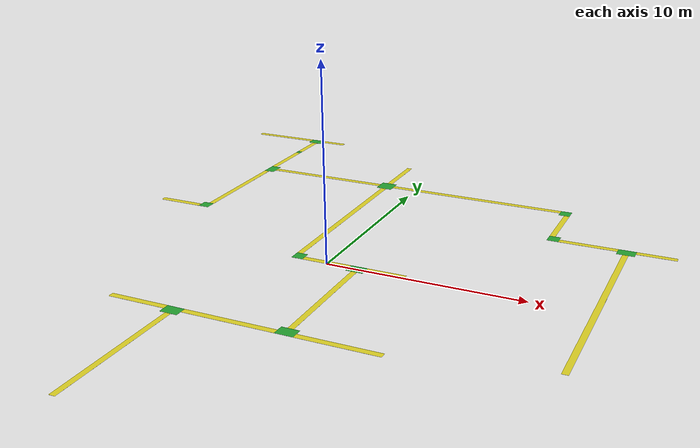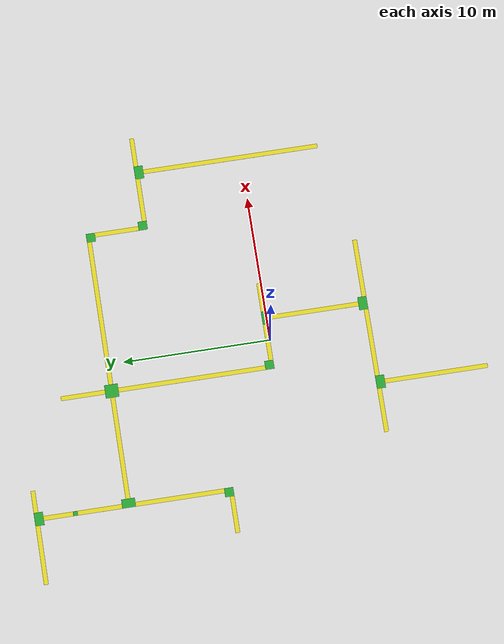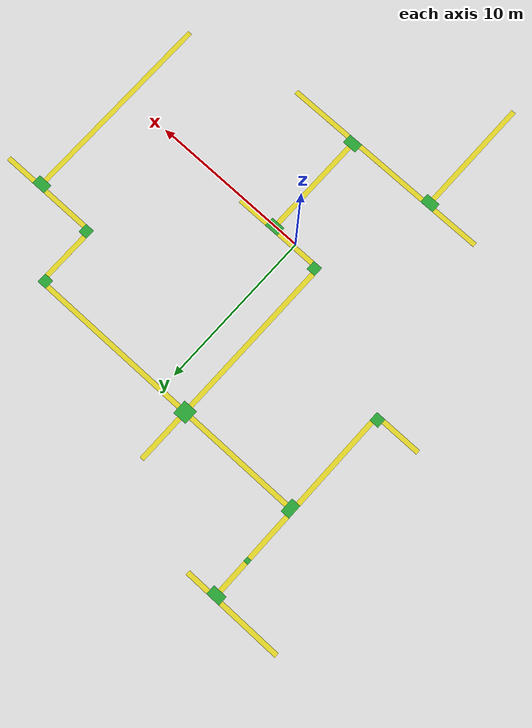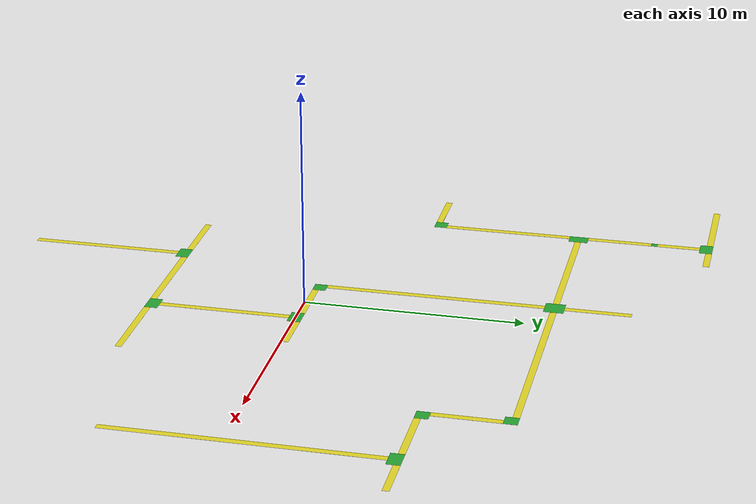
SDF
<?xml version='1.0'?>
<sdf version='1.7'>
  <model name='sideblock_path'>
    <link name='Line_11'>
      <pose>-3.96901 -10.6787 -0.000333 0 0 -1.5708</pose>
      <self_collide>0</self_collide>
      <enable_wind>0</enable_wind>
      <kinematic>0</kinematic>
      <gravity>1</gravity>
      <inertial>
        <mass>1</mass>
        <pose>0 0 0 0 -0 0</pose>
        <inertia>
          <ixx>1</ixx>
          <ixy>0</ixy>
          <ixz>0</ixz>
          <iyy>1</iyy>
          <iyz>0</iyz>
          <izz>1</izz>
        </inertia>
      </inertial>
      <visual name='Line_11_Visual'>
        <pose>0 0 0.0005 0 -0 0</pose>
        <geometry>
          <box>
            <size>7 0.3 0.001</size>
          </box>
        </geometry>
        <material>
          <script>
            <uri>file://media/materials/scripts/gazebo.material</uri>
            <name>Gazebo/Yellow</name>
          </script>
          <shader type='pixel'>
            <normal_map>__default__</normal_map>
          </shader>
          <ambient>1 1 0 1</ambient>
          <diffuse>1 1 0 1</diffuse>
          <emissive>0 0 0 1</emissive>
        </material>
        <meta>
          <layer>0</layer>
        </meta>
        <transparency>0</transparency>
        <cast_shadows>1</cast_shadows>
      </visual>
    </link>
    <link name='Line_13'>
      <pose>-3.96901 -6.87868 0 0 -0 3.14159</pose>
      <self_collide>0</self_collide>
      <enable_wind>0</enable_wind>
      <kinematic>0</kinematic>
      <gravity>1</gravity>
      <inertial>
        <mass>1.82173</mass>
        <pose>0 0 0 0 -0 0</pose>
        <inertia>
          <ixx>0.451111</ixx>
          <ixy>0</ixy>
          <ixz>0</ixz>
          <iyy>0.165474</iyy>
          <iyz>0</iyz>
          <izz>0.312963</izz>
        </inertia>
      </inertial>
      <visual name='Line_13_Visual'>
        <pose>0 0 0.0005 0 -0 0</pose>
        <geometry>
          <box>
            <size>0.9 0.6 0.001</size>
          </box>
        </geometry>
        <material>
          <script>
            <uri>file://media/materials/scripts/gazebo.material</uri>
            <name>Gazebo/Green</name>
          </script>
          <shader type='pixel'/>
        </material>
        <meta>
          <layer>0</layer>
        </meta>
        <transparency>0</transparency>
        <cast_shadows>1</cast_shadows>
      </visual>
    </link>
    <link name='Line_14'>
      <pose>-3.66901 -7.32868 0 0 0 -3e-06</pose>
      <self_collide>0</self_collide>
      <enable_wind>0</enable_wind>
      <kinematic>0</kinematic>
      <gravity>1</gravity>
      <inertial>
        <mass>1</mass>
        <pose>0 0 0 0 -0 0</pose>
        <inertia>
          <ixx>1</ixx>
          <ixy>0</ixy>
          <ixz>0</ixz>
          <iyy>1</iyy>
          <iyz>0</iyz>
          <izz>1</izz>
        </inertia>
      </inertial>
      <visual name='Line_14_Visual'>
        <pose>0 0 0.0005 0 -0 0</pose>
        <geometry>
          <box>
            <size>0.3 0.3 0.001</size>
          </box>
        </geometry>
        <material>
          <script>
            <uri>file://media/materials/scripts/gazebo.material</uri>
            <name>Gazebo/GreyTransparent</name>
          </script>
          <shader type='pixel'/>
        </material>
        <meta>
          <layer>0</layer>
        </meta>
        <transparency>1</transparency>
        <cast_shadows>1</cast_shadows>
        <visible>0</visible>
      </visual>
    </link>
    <link name='Line_14_clone'>
      <pose>1.28057 -6.12869 -0.000333 0 0 -3e-06</pose>
      <self_collide>0</self_collide>
      <enable_wind>0</enable_wind>
      <kinematic>0</kinematic>
      <gravity>1</gravity>
      <inertial>
        <mass>1</mass>
        <pose>0 0 0 0 -0 0</pose>
        <inertia>
          <ixx>1</ixx>
          <ixy>0</ixy>
          <ixz>0</ixz>
          <iyy>1</iyy>
          <iyz>0</iyz>
          <izz>1</izz>
        </inertia>
      </inertial>
      <visual name='Line_14_Visual'>
        <pose>0 0 0.0005 0 -0 0</pose>
        <geometry>
          <box>
            <size>0.3 0.3 0.001</size>
          </box>
        </geometry>
        <material>
          <script>
            <uri>file://media/materials/scripts/gazebo.material</uri>
            <name>Gazebo/GreyTransparent</name>
          </script>
          <shader type='pixel'/>
        </material>
        <meta>
          <layer>0</layer>
        </meta>
        <transparency>1</transparency>
        <cast_shadows>1</cast_shadows>
      </visual>
    </link>
    <link name='Line_14_clone_0'>
      <pose>1.88059 -0.427979 0 0 0 -3e-06</pose>
      <self_collide>0</self_collide>
      <enable_wind>0</enable_wind>
      <kinematic>0</kinematic>
      <gravity>1</gravity>
      <inertial>
        <mass>1</mass>
        <pose>0 0 0 0 -0 0</pose>
        <inertia>
          <ixx>1</ixx>
          <ixy>0</ixy>
          <ixz>0</ixz>
          <iyy>1</iyy>
          <iyz>0</iyz>
          <izz>1</izz>
        </inertia>
      </inertial>
      <visual name='Line_14_Visual'>
        <pose>0 0 0.0005 0 -0 0</pose>
        <geometry>
          <box>
            <size>0.3 0.3 0.001</size>
          </box>
        </geometry>
        <material>
          <script>
            <uri>file://media/materials/scripts/gazebo.material</uri>
            <name>Gazebo/GreyTransparent</name>
          </script>
          <shader type='pixel'/>
        </material>
        <meta>
          <layer>0</layer>
        </meta>
        <transparency>1</transparency>
        <cast_shadows>1</cast_shadows>
        <visible>0</visible>
      </visual>
    </link>
    <link name='Line_23'>
      <pose>-1.19398 -6.72869 0 0 0 -3e-06</pose>
      <self_collide>0</self_collide>
      <enable_wind>0</enable_wind>
      <kinematic>0</kinematic>
      <gravity>1</gravity>
      <inertial>
        <mass>1</mass>
        <pose>0 0 0 0 -0 0</pose>
        <inertia>
          <ixx>1</ixx>
          <ixy>0</ixy>
          <ixz>0</ixz>
          <iyy>1</iyy>
          <iyz>0</iyz>
          <izz>1</izz>
        </inertia>
      </inertial>
      <visual name='Line_23_Visual'>
        <pose>0 0 0.0005 0 -0 0</pose>
        <geometry>
          <box>
            <size>4.65006 0.3 0.001</size>
          </box>
        </geometry>
        <material>
          <script>
            <uri>file://media/materials/scripts/gazebo.material</uri>
            <name>Gazebo/Yellow</name>
          </script>
          <shader type='pixel'>
            <normal_map>__default__</normal_map>
          </shader>
          <ambient>1 1 0 1</ambient>
          <diffuse>1 1 0 1</diffuse>
          <emissive>0 0 0 1</emissive>
        </material>
        <meta>
          <layer>0</layer>
        </meta>
        <transparency>0</transparency>
        <cast_shadows>1</cast_shadows>
      </visual>
    </link>
    <link name='Line_23_clone'>
      <pose>-5.91901 -6.72868 0 0 0 -3e-06</pose>
      <self_collide>0</self_collide>
      <enable_wind>0</enable_wind>
      <kinematic>0</kinematic>
      <gravity>1</gravity>
      <inertial>
        <mass>1</mass>
        <pose>0 0 0 0 -0 0</pose>
        <inertia>
          <ixx>1</ixx>
          <ixy>0</ixy>
          <ixz>0</ixz>
          <iyy>1</iyy>
          <iyz>0</iyz>
          <izz>1</izz>
        </inertia>
      </inertial>
      <visual name='Line_23_Visual'>
        <pose>0 0 0.0005 0 -0 0</pose>
        <geometry>
          <box>
            <size>3 0.3 0.001</size>
          </box>
        </geometry>
        <material>
          <script>
            <uri>file://media/materials/scripts/gazebo.material</uri>
            <name>Gazebo/Yellow</name>
          </script>
          <shader type='pixel'>
            <normal_map>__default__</normal_map>
          </shader>
          <ambient>1 1 0 1</ambient>
          <diffuse>1 1 0 1</diffuse>
          <emissive>0 0 0 1</emissive>
        </material>
        <meta>
          <layer>0</layer>
        </meta>
        <transparency>0</transparency>
        <cast_shadows>1</cast_shadows>
      </visual>
    </link>
    <link name='Line_24'>
      <pose>1.58105 -6.57869 0 0 -0 1.57159</pose>
      <self_collide>0</self_collide>
      <enable_wind>0</enable_wind>
      <kinematic>0</kinematic>
      <gravity>1</gravity>
      <inertial>
        <mass>1</mass>
        <pose>0 0 0 0 -0 0</pose>
        <inertia>
          <ixx>1</ixx>
          <ixy>0</ixy>
          <ixz>0</ixz>
          <iyy>1</iyy>
          <iyz>0</iyz>
          <izz>1</izz>
        </inertia>
      </inertial>
      <visual name='Line_24_Visual'>
        <pose>0 0 0.0005 0 -0 1.57</pose>
        <geometry>
          <box>
            <size>0.9 0.6 0.001</size>
          </box>
        </geometry>
        <material>
          <script>
            <uri>file://media/materials/scripts/gazebo.material</uri>
            <name>Gazebo/Green</name>
          </script>
          <shader type='pixel'/>
        </material>
        <meta>
          <layer>0</layer>
        </meta>
        <transparency>0</transparency>
        <cast_shadows>1</cast_shadows>
      </visual>
    </link>
    <link name='Line_24_clone'>
      <pose>1.58011 0.022736 0 0 -0 1.57159</pose>
      <self_collide>0</self_collide>
      <enable_wind>0</enable_wind>
      <kinematic>0</kinematic>
      <gravity>1</gravity>
      <inertial>
        <mass>1</mass>
        <pose>0 0 0 0 -0 0</pose>
        <inertia>
          <ixx>1</ixx>
          <ixy>0</ixy>
          <ixz>0</ixz>
          <iyy>1</iyy>
          <iyz>0</iyz>
          <izz>1</izz>
        </inertia>
      </inertial>
      <visual name='Line_24_Visual'>
        <pose>0 0 0.0005 0 -0 1.57</pose>
        <geometry>
          <box>
            <size>0.9 0.6 0.001</size>
          </box>
        </geometry>
        <material>
          <script>
            <uri>file://media/materials/scripts/gazebo.material</uri>
            <name>Gazebo/Green</name>
          </script>
          <shader type='pixel'/>
        </material>
        <meta>
          <layer>0</layer>
        </meta>
        <transparency>0</transparency>
        <cast_shadows>1</cast_shadows>
      </visual>
    </link>
    <link name='Line_24_clone_clone'>
      <pose>-1.67132 0.319953 0 0 -0 1.57159</pose>
      <self_collide>0</self_collide>
      <enable_wind>0</enable_wind>
      <kinematic>0</kinematic>
      <gravity>1</gravity>
      <inertial>
        <mass>1</mass>
        <pose>0 0 0 0 -0 0</pose>
        <inertia>
          <ixx>1</ixx>
          <ixy>0</ixy>
          <ixz>0</ixz>
          <iyy>1</iyy>
          <iyz>0</iyz>
          <izz>1</izz>
        </inertia>
      </inertial>
      <visual name='Line_24_Visual'>
        <pose>0 0 0.0005 0 -0 1.57</pose>
        <geometry>
          <box>
            <size>0.6 0.6 0.001</size>
          </box>
        </geometry>
        <material>
          <script>
            <uri>file://media/materials/scripts/gazebo.material</uri>
            <name>Gazebo/Green</name>
          </script>
          <shader type='pixel'>
            <normal_map>__default__</normal_map>
          </shader>
          <ambient>0 1 0 1</ambient>
          <diffuse>0 1 0 1</diffuse>
          <specular>0.1 0.1 0.1 1</specular>
          <emissive>0 0 0 1</emissive>
        </material>
        <meta>
          <layer>0</layer>
        </meta>
        <transparency>0</transparency>
        <cast_shadows>1</cast_shadows>
      </visual>
    </link>
    <link name='Line_24_clone_clone_0'>
      <pose>-1.82177 11.0711 0 0 -0 1.57159</pose>
      <self_collide>0</self_collide>
      <enable_wind>0</enable_wind>
      <kinematic>0</kinematic>
      <gravity>1</gravity>
      <inertial>
        <mass>1</mass>
        <pose>0 0 0 0 -0 0</pose>
        <inertia>
          <ixx>1</ixx>
          <ixy>0</ixy>
          <ixz>0</ixz>
          <iyy>1</iyy>
          <iyz>0</iyz>
          <izz>1</izz>
        </inertia>
      </inertial>
      <visual name='Line_24_Visual'>
        <pose>0 0 0.0005 0 -0 1.57</pose>
        <geometry>
          <box>
            <size>0.9 0.9 0.001</size>
          </box>
        </geometry>
        <material>
          <script>
            <uri>file://media/materials/scripts/gazebo.material</uri>
            <name>Gazebo/Green</name>
          </script>
          <shader type='pixel'>
            <normal_map>__default__</normal_map>
          </shader>
          <ambient>0 1 0 1</ambient>
          <diffuse>0 1 0 1</diffuse>
          <specular>0.1 0.1 0.1 1</specular>
          <emissive>0 0 0 1</emissive>
        </material>
        <meta>
          <layer>0</layer>
        </meta>
        <transparency>0</transparency>
        <cast_shadows>1</cast_shadows>
      </visual>
    </link>
    <link name='Line_24_clone_clone_1'>
      <pose>-9.57332 11.0711 0 0 -0 1.57159</pose>
      <self_collide>0</self_collide>
      <enable_wind>0</enable_wind>
      <kinematic>0</kinematic>
      <gravity>1</gravity>
      <inertial>
        <mass>1</mass>
        <pose>0 0 0 0 -0 0</pose>
        <inertia>
          <ixx>1</ixx>
          <ixy>0</ixy>
          <ixz>0</ixz>
          <iyy>1</iyy>
          <iyz>0</iyz>
          <izz>1</izz>
        </inertia>
      </inertial>
      <visual name='Line_24_Visual'>
        <pose>0 0 0.0005 0 -0 0</pose>
        <geometry>
          <box>
            <size>0.9 0.6 0.001</size>
          </box>
        </geometry>
        <material>
          <script>
            <uri>file://media/materials/scripts/gazebo.material</uri>
            <name>Gazebo/Green</name>
          </script>
          <shader type='pixel'>
            <normal_map>__default__</normal_map>
          </shader>
          <ambient>0 1 0 1</ambient>
          <diffuse>0 1 0 1</diffuse>
          <specular>0.1 0.1 0.1 1</specular>
          <emissive>0 0 0 1</emissive>
        </material>
        <meta>
          <layer>0</layer>
        </meta>
        <transparency>0</transparency>
        <cast_shadows>1</cast_shadows>
      </visual>
    </link>
    <link name='Line_24_clone_clone_1_clone'>
      <pose>-9.72367 14.6715 0 0 -0 1.57159</pose>
      <self_collide>0</self_collide>
      <enable_wind>0</enable_wind>
      <kinematic>0</kinematic>
      <gravity>1</gravity>
      <inertial>
        <mass>1</mass>
        <pose>0 0 0 0 -0 0</pose>
        <inertia>
          <ixx>1</ixx>
          <ixy>0</ixy>
          <ixz>0</ixz>
          <iyy>1</iyy>
          <iyz>0</iyz>
          <izz>1</izz>
        </inertia>
      </inertial>
      <visual name='Line_24_Visual'>
        <pose>0 0 0.0005 0 -0 0</pose>
        <geometry>
          <box>
            <size>0.3 0.3 0.001</size>
          </box>
        </geometry>
        <material>
          <script>
            <uri>file://media/materials/scripts/gazebo.material</uri>
            <name>Gazebo/Green</name>
          </script>
          <shader type='pixel'>
            <normal_map>__default__</normal_map>
          </shader>
          <ambient>0 1 0 1</ambient>
          <diffuse>0 1 0 1</diffuse>
          <specular>0.1 0.1 0.1 1</specular>
          <emissive>0 0 0 1</emissive>
        </material>
        <meta>
          <layer>0</layer>
        </meta>
        <transparency>0</transparency>
        <cast_shadows>1</cast_shadows>
      </visual>
    </link>
    <link name='Line_24_clone_clone_1_clone_0'>
      <pose>-9.72367 17.1224 0 0 -0 1.57159</pose>
      <self_collide>0</self_collide>
      <enable_wind>0</enable_wind>
      <kinematic>0</kinematic>
      <gravity>1</gravity>
      <inertial>
        <mass>1</mass>
        <pose>0 0 0 0 -0 0</pose>
        <inertia>
          <ixx>1</ixx>
          <ixy>0</ixy>
          <ixz>0</ixz>
          <iyy>1</iyy>
          <iyz>0</iyz>
          <izz>1</izz>
        </inertia>
      </inertial>
      <visual name='Line_24_Visual'>
        <pose>0 0 0.0005 0 -0 1.57</pose>
        <geometry>
          <box>
            <size>0.9 0.6 0.001</size>
          </box>
        </geometry>
        <material>
          <script>
            <uri>file://media/materials/scripts/gazebo.material</uri>
            <name>Gazebo/Green</name>
          </script>
          <shader type='pixel'>
            <normal_map>__default__</normal_map>
          </shader>
          <ambient>0 1 0 1</ambient>
          <diffuse>0 1 0 1</diffuse>
          <specular>0.1 0.1 0.1 1</specular>
          <emissive>0 0 0 1</emissive>
        </material>
        <meta>
          <layer>0</layer>
        </meta>
        <transparency>0</transparency>
        <cast_shadows>1</cast_shadows>
      </visual>
    </link>
    <link name='Line_24_clone_clone_2'>
      <pose>12.9823 7.03119 0 0 -0 1.57159</pose>
      <self_collide>0</self_collide>
      <enable_wind>0</enable_wind>
      <kinematic>0</kinematic>
      <gravity>1</gravity>
      <inertial>
        <mass>1</mass>
        <pose>0 0 0 0 -0 0</pose>
        <inertia>
          <ixx>1</ixx>
          <ixy>0</ixy>
          <ixz>0</ixz>
          <iyy>1</iyy>
          <iyz>0</iyz>
          <izz>1</izz>
        </inertia>
      </inertial>
      <visual name='Line_24_Visual'>
        <pose>0 0 0.0005 0 -0 1.57</pose>
        <geometry>
          <box>
            <size>0.9 0.6 0.001</size>
          </box>
        </geometry>
        <material>
          <script>
            <uri>file://media/materials/scripts/gazebo.material</uri>
            <name>Gazebo/Green</name>
          </script>
          <shader type='pixel'/>
        </material>
        <meta>
          <layer>0</layer>
        </meta>
        <transparency>0</transparency>
        <cast_shadows>1</cast_shadows>
      </visual>
    </link>
    <link name='Line_24_clone_clone_clone'>
      <pose>-9.87411 4.32043 0 0 -0 1.57159</pose>
      <self_collide>0</self_collide>
      <enable_wind>0</enable_wind>
      <kinematic>0</kinematic>
      <gravity>1</gravity>
      <inertial>
        <mass>1</mass>
        <pose>0 0 0 0 -0 0</pose>
        <inertia>
          <ixx>1</ixx>
          <ixy>0</ixy>
          <ixz>0</ixz>
          <iyy>1</iyy>
          <iyz>0</iyz>
          <izz>1</izz>
        </inertia>
      </inertial>
      <visual name='Line_24_Visual'>
        <pose>0 0 0.0005 0 -0 1.57</pose>
        <geometry>
          <box>
            <size>0.6 0.6 0.001</size>
          </box>
        </geometry>
        <material>
          <script>
            <uri>file://media/materials/scripts/gazebo.material</uri>
            <name>Gazebo/Green</name>
          </script>
          <shader type='pixel'>
            <normal_map>__default__</normal_map>
          </shader>
          <ambient>0 1 0 1</ambient>
          <diffuse>0 1 0 1</diffuse>
          <specular>0.1 0.1 0.1 1</specular>
          <emissive>0 0 0 1</emissive>
        </material>
        <meta>
          <layer>0</layer>
        </meta>
        <transparency>0</transparency>
        <cast_shadows>1</cast_shadows>
      </visual>
    </link>
    <link name='Line_24_clone_clone_clone_0'>
      <pose>8.9299 10.9286 0 0 -0 1.57159</pose>
      <self_collide>0</self_collide>
      <enable_wind>0</enable_wind>
      <kinematic>0</kinematic>
      <gravity>1</gravity>
      <inertial>
        <mass>1</mass>
        <pose>0 0 0 0 -0 0</pose>
        <inertia>
          <ixx>1</ixx>
          <ixy>0</ixy>
          <ixz>0</ixz>
          <iyy>1</iyy>
          <iyz>0</iyz>
          <izz>1</izz>
        </inertia>
      </inertial>
      <visual name='Line_24_Visual'>
        <pose>0 0 0.0005 0 -0 1.57</pose>
        <geometry>
          <box>
            <size>0.6 0.6 0.001</size>
          </box>
        </geometry>
        <material>
          <script>
            <uri>file://media/materials/scripts/gazebo.material</uri>
            <name>Gazebo/Green</name>
          </script>
          <shader type='pixel'>
            <normal_map>__default__</normal_map>
          </shader>
          <ambient>0 1 0 1</ambient>
          <diffuse>0 1 0 1</diffuse>
          <specular>0.1 0.1 0.1 1</specular>
          <emissive>0 0 0 1</emissive>
        </material>
        <meta>
          <layer>0</layer>
        </meta>
        <transparency>0</transparency>
        <cast_shadows>1</cast_shadows>
      </visual>
    </link>
    <link name='Line_24_clone_clone_clone_0_clone'>
      <pose>9.23084 7.32762 0 0 -0 1.57159</pose>
      <self_collide>0</self_collide>
      <enable_wind>0</enable_wind>
      <kinematic>0</kinematic>
      <gravity>1</gravity>
      <inertial>
        <mass>1</mass>
        <pose>0 0 0 0 -0 0</pose>
        <inertia>
          <ixx>1</ixx>
          <ixy>0</ixy>
          <ixz>0</ixz>
          <iyy>1</iyy>
          <iyz>0</iyz>
          <izz>1</izz>
        </inertia>
      </inertial>
      <visual name='Line_24_Visual'>
        <pose>0 0 0.0005 0 -0 1.57</pose>
        <geometry>
          <box>
            <size>0.6 0.6 0.001</size>
          </box>
        </geometry>
        <material>
          <script>
            <uri>file://media/materials/scripts/gazebo.material</uri>
            <name>Gazebo/Green</name>
          </script>
          <shader type='pixel'>
            <normal_map>__default__</normal_map>
          </shader>
          <ambient>0 1 0 1</ambient>
          <diffuse>0 1 0 1</diffuse>
          <specular>0.1 0.1 0.1 1</specular>
          <emissive>0 0 0 1</emissive>
        </material>
        <meta>
          <layer>0</layer>
        </meta>
        <transparency>0</transparency>
        <cast_shadows>1</cast_shadows>
      </visual>
    </link>
    <link name='Line_25'>
      <pose>4.03105 -6.72869 -0.000333 0 -0 1.57159</pose>
      <self_collide>0</self_collide>
      <enable_wind>0</enable_wind>
      <kinematic>0</kinematic>
      <gravity>1</gravity>
      <inertial>
        <mass>1</mass>
        <pose>0 0 0 0 -0 0</pose>
        <inertia>
          <ixx>1</ixx>
          <ixy>0</ixy>
          <ixz>0</ixz>
          <iyy>1</iyy>
          <iyz>0</iyz>
          <izz>1</izz>
        </inertia>
      </inertial>
      <visual name='Line_25_Visual'>
        <pose>0 0 0.0005 0 -0 1.57</pose>
        <geometry>
          <box>
            <size>4 0.3 0.001</size>
          </box>
        </geometry>
        <material>
          <script>
            <uri>file://media/materials/scripts/gazebo.material</uri>
            <name>Gazebo/Yellow</name>
          </script>
          <shader type='pixel'>
            <normal_map>__default__</normal_map>
          </shader>
          <ambient>1 1 0 1</ambient>
          <diffuse>1 1 0 1</diffuse>
          <emissive>0 0 0 1</emissive>
        </material>
        <meta>
          <layer>0</layer>
        </meta>
        <transparency>0</transparency>
        <cast_shadows>1</cast_shadows>
      </visual>
    </link>
    <link name='Line_25_clone'>
      <pose>3.03083 0.170272 -0.000333 0 -0 1.57159</pose>
      <self_collide>0</self_collide>
      <enable_wind>0</enable_wind>
      <kinematic>0</kinematic>
      <gravity>1</gravity>
      <inertial>
        <mass>1</mass>
        <pose>0 0 0 0 -0 0</pose>
        <inertia>
          <ixx>1</ixx>
          <ixy>0</ixy>
          <ixz>0</ixz>
          <iyy>1</iyy>
          <iyz>0</iyz>
          <izz>1</izz>
        </inertia>
      </inertial>
      <visual name='Line_25_Visual'>
        <pose>0 0 0.0005 0 -0 1.57</pose>
        <geometry>
          <box>
            <size>2 0.3 0.001</size>
          </box>
        </geometry>
        <material>
          <script>
            <uri>file://media/materials/scripts/gazebo.material</uri>
            <name>Gazebo/Yellow</name>
          </script>
          <shader type='pixel'>
            <normal_map>__default__</normal_map>
          </shader>
          <ambient>1 1 0 1</ambient>
          <diffuse>1 1 0 1</diffuse>
          <emissive>0 0 0 1</emissive>
        </material>
        <meta>
          <layer>0</layer>
        </meta>
        <transparency>0</transparency>
        <cast_shadows>1</cast_shadows>
      </visual>
    </link>
    <link name='Line_25_clone_0'>
      <pose>-0.120605 0.171464 -0.000333 0 -0 1.57159</pose>
      <self_collide>0</self_collide>
      <enable_wind>0</enable_wind>
      <kinematic>0</kinematic>
      <gravity>1</gravity>
      <inertial>
        <mass>1</mass>
        <pose>0 0 0 0 -0 0</pose>
        <inertia>
          <ixx>1</ixx>
          <ixy>0</ixy>
          <ixz>0</ixz>
          <iyy>1</iyy>
          <iyz>0</iyz>
          <izz>1</izz>
        </inertia>
      </inertial>
      <visual name='Line_25_Visual'>
        <pose>0 0 0.0005 0 -0 1.57</pose>
        <geometry>
          <box>
            <size>2.5 0.3 0.001</size>
          </box>
        </geometry>
        <material>
          <script>
            <uri>file://media/materials/scripts/gazebo.material</uri>
            <name>Gazebo/Yellow</name>
          </script>
          <shader type='pixel'>
            <normal_map>__default__</normal_map>
          </shader>
          <ambient>1 1 0 1</ambient>
          <diffuse>1 1 0 1</diffuse>
          <emissive>0 0 0 1</emissive>
        </material>
        <meta>
          <layer>0</layer>
        </meta>
        <transparency>0</transparency>
        <cast_shadows>1</cast_shadows>
      </visual>
    </link>
    <link name='Line_25_clone_0_clone'>
      <pose>-5.77272 11.0711 -0.000333 0 -0 1.57159</pose>
      <self_collide>0</self_collide>
      <enable_wind>0</enable_wind>
      <kinematic>0</kinematic>
      <gravity>1</gravity>
      <inertial>
        <mass>1</mass>
        <pose>0 0 0 0 -0 0</pose>
        <inertia>
          <ixx>1</ixx>
          <ixy>0</ixy>
          <ixz>0</ixz>
          <iyy>1</iyy>
          <iyz>0</iyz>
          <izz>1</izz>
        </inertia>
      </inertial>
      <visual name='Line_25_Visual'>
        <pose>0 0 0.0005 0 -0 1.57</pose>
        <geometry>
          <box>
            <size>7 0.3 0.001</size>
          </box>
        </geometry>
        <material>
          <script>
            <uri>file://media/materials/scripts/gazebo.material</uri>
            <name>Gazebo/Yellow</name>
          </script>
          <shader type='pixel'>
            <normal_map>__default__</normal_map>
          </shader>
          <ambient>1 1 0 1</ambient>
          <diffuse>1 1 0 1</diffuse>
          <emissive>0 0 0 1</emissive>
        </material>
        <meta>
          <layer>0</layer>
        </meta>
        <transparency>0</transparency>
        <cast_shadows>1</cast_shadows>
      </visual>
    </link>
    <link name='Line_25_clone_0_clone_0'>
      <pose>3.62918 11.0711 -0.000333 0 -0 1.57159</pose>
      <self_collide>0</self_collide>
      <enable_wind>0</enable_wind>
      <kinematic>0</kinematic>
      <gravity>1</gravity>
      <inertial>
        <mass>1</mass>
        <pose>0 0 0 0 -0 0</pose>
        <inertia>
          <ixx>1</ixx>
          <ixy>0</ixy>
          <ixz>0</ixz>
          <iyy>1</iyy>
          <iyz>0</iyz>
          <izz>1</izz>
        </inertia>
      </inertial>
      <visual name='Line_25_Visual'>
        <pose>0 0 0.0005 0 -0 1.57</pose>
        <geometry>
          <box>
            <size>10 0.3 0.001</size>
          </box>
        </geometry>
        <material>
          <script>
            <uri>file://media/materials/scripts/gazebo.material</uri>
            <name>Gazebo/Yellow</name>
          </script>
          <shader type='pixel'>
            <normal_map>__default__</normal_map>
          </shader>
          <ambient>1 1 0 1</ambient>
          <diffuse>1 1 0 1</diffuse>
          <emissive>0 0 0 1</emissive>
        </material>
        <meta>
          <layer>0</layer>
        </meta>
        <transparency>0</transparency>
        <cast_shadows>1</cast_shadows>
      </visual>
    </link>
    <link name='Line_25_clone_0_clone_0_clone'>
      <pose>-11.4248 4.17194 -0.000333 0 -0 1.57159</pose>
      <self_collide>0</self_collide>
      <enable_wind>0</enable_wind>
      <kinematic>0</kinematic>
      <gravity>1</gravity>
      <inertial>
        <mass>1</mass>
        <pose>0 0 0 0 -0 0</pose>
        <inertia>
          <ixx>1</ixx>
          <ixy>0</ixy>
          <ixz>0</ixz>
          <iyy>1</iyy>
          <iyz>0</iyz>
          <izz>1</izz>
        </inertia>
      </inertial>
      <visual name='Line_25_Visual'>
        <pose>0 0 0.0005 0 -0 1.57</pose>
        <geometry>
          <box>
            <size>2.5 0.3 0.001</size>
          </box>
        </geometry>
        <material>
          <script>
            <uri>file://media/materials/scripts/gazebo.material</uri>
            <name>Gazebo/Yellow</name>
          </script>
          <shader type='pixel'>
            <normal_map>__default__</normal_map>
          </shader>
          <ambient>1 1 0 1</ambient>
          <diffuse>1 1 0 1</diffuse>
          <emissive>0 0 0 1</emissive>
        </material>
        <meta>
          <layer>0</layer>
        </meta>
        <transparency>0</transparency>
        <cast_shadows>1</cast_shadows>
      </visual>
    </link>
    <link name='Line_25_clone_0_clone_0_clone_clone'>
      <pose>-8.52295 17.2719 -0.000333 0 -0 1.57159</pose>
      <self_collide>0</self_collide>
      <enable_wind>0</enable_wind>
      <kinematic>0</kinematic>
      <gravity>1</gravity>
      <inertial>
        <mass>1</mass>
        <pose>0 0 0 0 -0 0</pose>
        <inertia>
          <ixx>1</ixx>
          <ixy>0</ixy>
          <ixz>0</ixz>
          <iyy>1</iyy>
          <iyz>0</iyz>
          <izz>1</izz>
        </inertia>
      </inertial>
      <visual name='Line_25_Visual'>
        <pose>0 0 0.0005 0 -0 1.57</pose>
        <geometry>
          <box>
            <size>1.5 0.3 0.001</size>
          </box>
        </geometry>
        <material>
          <script>
            <uri>file://media/materials/scripts/gazebo.material</uri>
            <name>Gazebo/Yellow</name>
          </script>
          <shader type='pixel'>
            <normal_map>__default__</normal_map>
          </shader>
          <ambient>1 1 0 1</ambient>
          <diffuse>1 1 0 1</diffuse>
          <emissive>0 0 0 1</emissive>
        </material>
        <meta>
          <layer>0</layer>
        </meta>
        <transparency>0</transparency>
        <cast_shadows>1</cast_shadows>
      </visual>
    </link>
    <link name='Line_25_clone_0_clone_0_clone_clone_0'>
      <pose>-12.1744 17.2699 -0.000333 0 -0 1.57159</pose>
      <self_collide>0</self_collide>
      <enable_wind>0</enable_wind>
      <kinematic>0</kinematic>
      <gravity>1</gravity>
      <inertial>
        <mass>1</mass>
        <pose>0 0 0 0 -0 0</pose>
        <inertia>
          <ixx>1</ixx>
          <ixy>0</ixy>
          <ixz>0</ixz>
          <iyy>1</iyy>
          <iyz>0</iyz>
          <izz>1</izz>
        </inertia>
      </inertial>
      <visual name='Line_25_Visual'>
        <pose>0 0 0.0005 0 -0 1.57</pose>
        <geometry>
          <box>
            <size>4 0.3 0.001</size>
          </box>
        </geometry>
        <material>
          <script>
            <uri>file://media/materials/scripts/gazebo.material</uri>
            <name>Gazebo/Yellow</name>
          </script>
          <shader type='pixel'>
            <normal_map>__default__</normal_map>
          </shader>
          <ambient>1 1 0 1</ambient>
          <diffuse>1 1 0 1</diffuse>
          <emissive>0 0 0 1</emissive>
        </material>
        <meta>
          <layer>0</layer>
        </meta>
        <transparency>0</transparency>
        <cast_shadows>1</cast_shadows>
      </visual>
    </link>
    <link name='Line_25_clone_0_clone_clone'>
      <pose>11.0316 7.17952 -0.000333 0 -0 1.57159</pose>
      <self_collide>0</self_collide>
      <enable_wind>0</enable_wind>
      <kinematic>0</kinematic>
      <gravity>1</gravity>
      <inertial>
        <mass>1</mass>
        <pose>0 0 0 0 -0 0</pose>
        <inertia>
          <ixx>1</ixx>
          <ixy>0</ixy>
          <ixz>0</ixz>
          <iyy>1</iyy>
          <iyz>0</iyz>
          <izz>1</izz>
        </inertia>
      </inertial>
      <visual name='Line_25_Visual'>
        <pose>0 0 0.0005 0 -0 1.57</pose>
        <geometry>
          <box>
            <size>3 0.3 0.001</size>
          </box>
        </geometry>
        <material>
          <script>
            <uri>file://media/materials/scripts/gazebo.material</uri>
            <name>Gazebo/Yellow</name>
          </script>
          <shader type='pixel'>
            <normal_map>__default__</normal_map>
          </shader>
          <ambient>1 1 0 1</ambient>
          <diffuse>1 1 0 1</diffuse>
          <emissive>0 0 0 1</emissive>
        </material>
        <meta>
          <layer>0</layer>
        </meta>
        <transparency>0</transparency>
        <cast_shadows>1</cast_shadows>
      </visual>
    </link>
    <link name='Line_25_clone_0_clone_clone_clone'>
      <pose>14.433 7.18031 -0.000333 0 -0 1.57159</pose>
      <self_collide>0</self_collide>
      <enable_wind>0</enable_wind>
      <kinematic>0</kinematic>
      <gravity>1</gravity>
      <inertial>
        <mass>1</mass>
        <pose>0 0 0 0 -0 0</pose>
        <inertia>
          <ixx>1</ixx>
          <ixy>0</ixy>
          <ixz>0</ixz>
          <iyy>1</iyy>
          <iyz>0</iyz>
          <izz>1</izz>
        </inertia>
      </inertial>
      <visual name='Line_25_Visual'>
        <pose>0 0 0.0005 0 -0 1.57</pose>
        <geometry>
          <box>
            <size>2 0.3 0.001</size>
          </box>
        </geometry>
        <material>
          <script>
            <uri>file://media/materials/scripts/gazebo.material</uri>
            <name>Gazebo/Yellow</name>
          </script>
          <shader type='pixel'>
            <normal_map>__default__</normal_map>
          </shader>
          <ambient>1 1 0 1</ambient>
          <diffuse>1 1 0 1</diffuse>
          <emissive>0 0 0 1</emissive>
        </material>
        <meta>
          <layer>0</layer>
        </meta>
        <transparency>0</transparency>
        <cast_shadows>1</cast_shadows>
      </visual>
    </link>
    <link name='Line_26'>
      <pose>1.58057 -3.27798 -0.000333 0 -0 1.57079</pose>
      <self_collide>0</self_collide>
      <enable_wind>0</enable_wind>
      <kinematic>0</kinematic>
      <gravity>1</gravity>
      <inertial>
        <mass>1</mass>
        <pose>0 0 0 0 -0 0</pose>
        <inertia>
          <ixx>1</ixx>
          <ixy>0</ixy>
          <ixz>0</ixz>
          <iyy>1</iyy>
          <iyz>0</iyz>
          <izz>1</izz>
        </inertia>
      </inertial>
      <visual name='Line_26_Visual'>
        <pose>0 0 0.0005 0 -0 0</pose>
        <geometry>
          <box>
            <size>6 0.3 0.001</size>
          </box>
        </geometry>
        <material>
          <script>
            <uri>file://media/materials/scripts/gazebo.material</uri>
            <name>Gazebo/Yellow</name>
          </script>
          <shader type='pixel'>
            <normal_map>__default__</normal_map>
          </shader>
          <ambient>1 1 0 1</ambient>
          <diffuse>1 1 0 1</diffuse>
          <emissive>0 0 0 1</emissive>
        </material>
        <meta>
          <layer>0</layer>
        </meta>
        <transparency>0</transparency>
        <cast_shadows>1</cast_shadows>
      </visual>
    </link>
    <link name='Line_26_clone'>
      <pose>-1.82177 5.62043 -0.000333 0 -0 1.57079</pose>
      <self_collide>0</self_collide>
      <enable_wind>0</enable_wind>
      <kinematic>0</kinematic>
      <gravity>1</gravity>
      <inertial>
        <mass>1</mass>
        <pose>0 0 0 0 -0 0</pose>
        <inertia>
          <ixx>1</ixx>
          <ixy>0</ixy>
          <ixz>0</ixz>
          <iyy>1</iyy>
          <iyz>0</iyz>
          <izz>1</izz>
        </inertia>
      </inertial>
      <visual name='Line_26_Visual'>
        <pose>0 0 0.0005 0 -0 0</pose>
        <geometry>
          <box>
            <size>10 0.3 0.001</size>
          </box>
        </geometry>
        <material>
          <script>
            <uri>file://media/materials/scripts/gazebo.material</uri>
            <name>Gazebo/Yellow</name>
          </script>
          <shader type='pixel'>
            <normal_map>__default__</normal_map>
          </shader>
          <ambient>1 1 0 1</ambient>
          <diffuse>1 1 0 1</diffuse>
          <emissive>0 0 0 1</emissive>
        </material>
        <meta>
          <layer>0</layer>
        </meta>
        <transparency>0</transparency>
        <cast_shadows>1</cast_shadows>
      </visual>
    </link>
    <link name='Line_26_clone_0'>
      <pose>-1.82177 13.0219 -0.000333 0 -0 1.57079</pose>
      <self_collide>0</self_collide>
      <enable_wind>0</enable_wind>
      <kinematic>0</kinematic>
      <gravity>1</gravity>
      <inertial>
        <mass>1</mass>
        <pose>0 0 0 0 -0 0</pose>
        <inertia>
          <ixx>1</ixx>
          <ixy>0</ixy>
          <ixz>0</ixz>
          <iyy>1</iyy>
          <iyz>0</iyz>
          <izz>1</izz>
        </inertia>
      </inertial>
      <visual name='Line_26_Visual'>
        <pose>0 0 0.0005 0 -0 0</pose>
        <geometry>
          <box>
            <size>3 0.3 0.001</size>
          </box>
        </geometry>
        <material>
          <script>
            <uri>file://media/materials/scripts/gazebo.material</uri>
            <name>Gazebo/Yellow</name>
          </script>
          <shader type='pixel'>
            <normal_map>__default__</normal_map>
          </shader>
          <ambient>1 1 0 1</ambient>
          <diffuse>1 1 0 1</diffuse>
          <emissive>0 0 0 1</emissive>
        </material>
        <meta>
          <layer>0</layer>
        </meta>
        <transparency>0</transparency>
        <cast_shadows>1</cast_shadows>
      </visual>
    </link>
    <link name='Line_26_clone_0_clone'>
      <pose>-9.72367 13.0214 -0.000333 0 -0 1.57079</pose>
      <self_collide>0</self_collide>
      <enable_wind>0</enable_wind>
      <kinematic>0</kinematic>
      <gravity>1</gravity>
      <inertial>
        <mass>1</mass>
        <pose>0 0 0 0 -0 0</pose>
        <inertia>
          <ixx>1</ixx>
          <ixy>0</ixy>
          <ixz>0</ixz>
          <iyy>1</iyy>
          <iyz>0</iyz>
          <izz>1</izz>
        </inertia>
      </inertial>
      <visual name='Line_26_Visual'>
        <pose>0 0 0.0005 0 -0 0</pose>
        <geometry>
          <box>
            <size>3 0.3 0.001</size>
          </box>
        </geometry>
        <material>
          <script>
            <uri>file://media/materials/scripts/gazebo.material</uri>
            <name>Gazebo/Yellow</name>
          </script>
          <shader type='pixel'>
            <normal_map>__default__</normal_map>
          </shader>
          <ambient>1 1 0 1</ambient>
          <diffuse>1 1 0 1</diffuse>
          <emissive>0 0 0 1</emissive>
        </material>
        <meta>
          <layer>0</layer>
        </meta>
        <transparency>0</transparency>
        <cast_shadows>1</cast_shadows>
      </visual>
    </link>
    <link name='Line_26_clone_0_clone_0'>
      <pose>-9.72366 7.62091 -0.000333 0 -0 1.57079</pose>
      <self_collide>0</self_collide>
      <enable_wind>0</enable_wind>
      <kinematic>0</kinematic>
      <gravity>1</gravity>
      <inertial>
        <mass>1</mass>
        <pose>0 0 0 0 -0 0</pose>
        <inertia>
          <ixx>1</ixx>
          <ixy>0</ixy>
          <ixz>0</ixz>
          <iyy>1</iyy>
          <iyz>0</iyz>
          <izz>1</izz>
        </inertia>
      </inertial>
      <visual name='Line_26_Visual'>
        <pose>0 0 0.0005 0 -0 0</pose>
        <geometry>
          <box>
            <size>6 0.3 0.001</size>
          </box>
        </geometry>
        <material>
          <script>
            <uri>file://media/materials/scripts/gazebo.material</uri>
            <name>Gazebo/Yellow</name>
          </script>
          <shader type='pixel'>
            <normal_map>__default__</normal_map>
          </shader>
          <ambient>1 1 0 1</ambient>
          <diffuse>1 1 0 1</diffuse>
          <emissive>0 0 0 1</emissive>
        </material>
        <meta>
          <layer>0</layer>
        </meta>
        <transparency>0</transparency>
        <cast_shadows>1</cast_shadows>
      </visual>
    </link>
    <link name='Line_26_clone_0_clone_0_clone'>
      <pose>-9.72367 15.8216 -0.000333 0 -0 1.57079</pose>
      <self_collide>0</self_collide>
      <enable_wind>0</enable_wind>
      <kinematic>0</kinematic>
      <gravity>1</gravity>
      <inertial>
        <mass>1</mass>
        <pose>0 0 0 0 -0 0</pose>
        <inertia>
          <ixx>1</ixx>
          <ixy>0</ixy>
          <ixz>0</ixz>
          <iyy>1</iyy>
          <iyz>0</iyz>
          <izz>1</izz>
        </inertia>
      </inertial>
      <visual name='Line_26_Visual'>
        <pose>0 0 0.0005 0 -0 0</pose>
        <geometry>
          <box>
            <size>2 0.3 0.001</size>
          </box>
        </geometry>
        <material>
          <script>
            <uri>file://media/materials/scripts/gazebo.material</uri>
            <name>Gazebo/Yellow</name>
          </script>
          <shader type='pixel'>
            <normal_map>__default__</normal_map>
          </shader>
          <ambient>1 1 0 1</ambient>
          <diffuse>1 1 0 1</diffuse>
          <emissive>0 0 0 1</emissive>
        </material>
        <meta>
          <layer>0</layer>
        </meta>
        <transparency>0</transparency>
        <cast_shadows>1</cast_shadows>
      </visual>
    </link>
    <link name='Line_26_clone_0_clone_1'>
      <pose>9.08037 9.1281 -0.000333 0 -0 1.57079</pose>
      <self_collide>0</self_collide>
      <enable_wind>0</enable_wind>
      <kinematic>0</kinematic>
      <gravity>1</gravity>
      <inertial>
        <mass>1</mass>
        <pose>0 0 0 0 -0 0</pose>
        <inertia>
          <ixx>1</ixx>
          <ixy>0</ixy>
          <ixz>0</ixz>
          <iyy>1</iyy>
          <iyz>0</iyz>
          <izz>1</izz>
        </inertia>
      </inertial>
      <visual name='Line_26_Visual'>
        <pose>0 0 0.0005 0 -0 0</pose>
        <geometry>
          <box>
            <size>3 0.3 0.001</size>
          </box>
        </geometry>
        <material>
          <script>
            <uri>file://media/materials/scripts/gazebo.material</uri>
            <name>Gazebo/Yellow</name>
          </script>
          <shader type='pixel'>
            <normal_map>__default__</normal_map>
          </shader>
          <ambient>1 1 0 1</ambient>
          <diffuse>1 1 0 1</diffuse>
          <emissive>0 0 0 1</emissive>
        </material>
        <meta>
          <layer>0</layer>
        </meta>
        <transparency>0</transparency>
        <cast_shadows>1</cast_shadows>
      </visual>
    </link>
    <link name='Line_26_clone_0_clone_1_clone'>
      <pose>12.9823 0.730474 -0.000333 0 -0 1.57079</pose>
      <self_collide>0</self_collide>
      <enable_wind>0</enable_wind>
      <kinematic>0</kinematic>
      <gravity>1</gravity>
      <inertial>
        <mass>1</mass>
        <pose>0 0 0 0 -0 0</pose>
        <inertia>
          <ixx>1</ixx>
          <ixy>0</ixy>
          <ixz>0</ixz>
          <iyy>1</iyy>
          <iyz>0</iyz>
          <izz>1</izz>
        </inertia>
      </inertial>
      <visual name='Line_26_Visual'>
        <pose>0 0 0.0005 0 -0 0</pose>
        <geometry>
          <box>
            <size>12 0.3 0.001</size>
          </box>
        </geometry>
        <material>
          <script>
            <uri>file://media/materials/scripts/gazebo.material</uri>
            <name>Gazebo/Yellow</name>
          </script>
          <shader type='pixel'>
            <normal_map>__default__</normal_map>
          </shader>
          <ambient>1 1 0 1</ambient>
          <diffuse>1 1 0 1</diffuse>
          <emissive>0 0 0 1</emissive>
        </material>
        <meta>
          <layer>0</layer>
        </meta>
        <transparency>0</transparency>
        <cast_shadows>1</cast_shadows>
      </visual>
    </link>
    <static>1</static>
    <allow_auto_disable>1</allow_auto_disable>
  </model>
</sdf>
